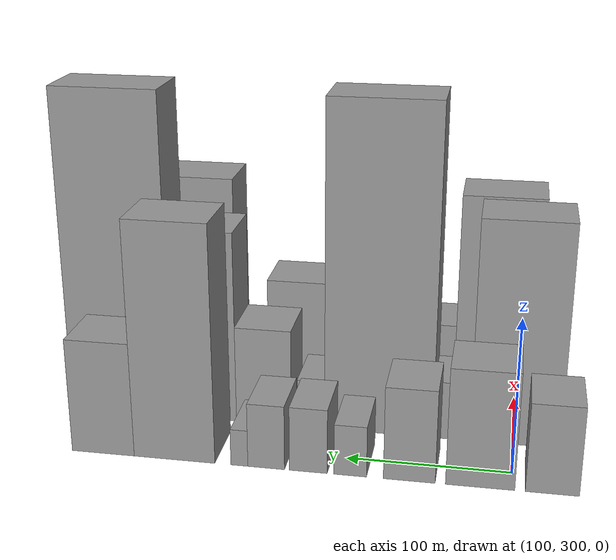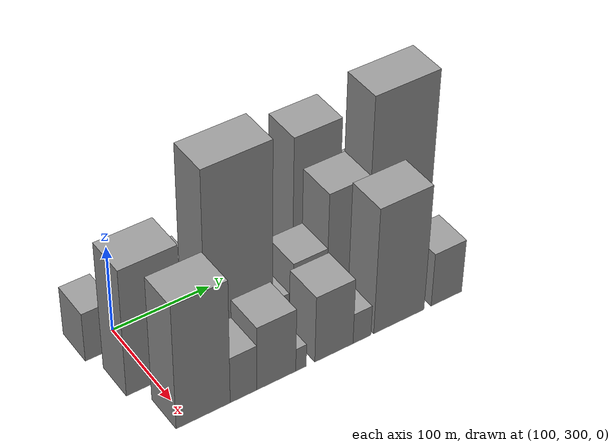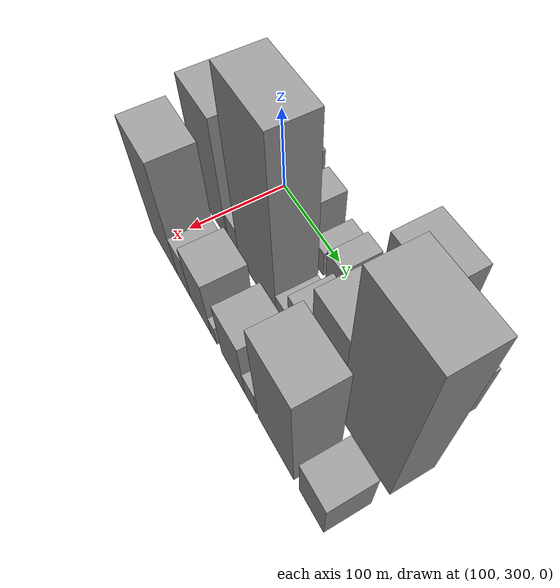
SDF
<sdf version="1.6">
 <world name="default">
  <model name="building_24">
   <static>1</static>
   <pose>100.0000 276.7771 0 0.000000 0.000000 0.000000</pose>
   <link name="link">
    <pose>0 0 28.50 0 0 0</pose>
    <collision name="collision"><geometry><box><size>40.0000 30.8225 57.0000</size></box></geometry></collision>
    <visual name="visual">
     <cast_shadows>0</cast_shadows>
     <geometry><box><size>40.0000 30.8225 57.0000</size></box></geometry>
     <material>
      <script>
       <uri>model://grey_wall/materials/scripts</uri>
       <uri>model://grey_wall/materials/textures</uri>
       <name>vrc/grey_wall</name>
      </script>
     </material>
    </visual>
   </link>
  </model>
  <model name="building_25">
   <static>1</static>
   <pose>100.0000 318.3123 0 0.000000 0.000000 0.000000</pose>
   <link name="link">
    <pose>0 0 37.50 0 0 0</pose>
    <collision name="collision"><geometry><box><size>40.0000 40.2480 75.0000</size></box></geometry></collision>
    <visual name="visual">
     <cast_shadows>0</cast_shadows>
     <geometry><box><size>40.0000 40.2480 75.0000</size></box></geometry>
     <material>
      <script>
       <uri>model://grey_wall/materials/scripts</uri>
       <uri>model://grey_wall/materials/textures</uri>
       <name>vrc/grey_wall</name>
      </script>
     </material>
    </visual>
   </link>
  </model>
  <model name="building_26">
   <static>1</static>
   <pose>100.0000 359.7797 0 0.000000 0.000000 0.000000</pose>
   <link name="link">
    <pose>0 0 30.00 0 0 0</pose>
    <collision name="collision"><geometry><box><size>40.0000 30.6868 60.0000</size></box></geometry></collision>
    <visual name="visual">
     <cast_shadows>0</cast_shadows>
     <geometry><box><size>40.0000 30.6868 60.0000</size></box></geometry>
     <material>
      <script>
       <uri>model://grey_wall/materials/scripts</uri>
       <uri>model://grey_wall/materials/textures</uri>
       <name>vrc/grey_wall</name>
      </script>
     </material>
    </visual>
   </link>
  </model>
  <model name="building_27">
   <static>1</static>
   <pose>100.0000 394.9521 0 0.000000 0.000000 0.000000</pose>
   <link name="link">
    <pose>0 0 16.50 0 0 0</pose>
    <collision name="collision"><geometry><box><size>40.0000 19.6581 33.0000</size></box></geometry></collision>
    <visual name="visual">
     <cast_shadows>0</cast_shadows>
     <geometry><box><size>40.0000 19.6581 33.0000</size></box></geometry>
     <material>
      <script>
       <uri>model://grey_wall/materials/scripts</uri>
       <uri>model://grey_wall/materials/textures</uri>
       <name>vrc/grey_wall</name>
      </script>
     </material>
    </visual>
   </link>
  </model>
  <model name="building_28">
   <static>1</static>
   <pose>100.0000 420.2818 0 0.000000 0.000000 0.000000</pose>
   <link name="link">
    <pose>0 0 21.00 0 0 0</pose>
    <collision name="collision"><geometry><box><size>40.0000 23.0011 42.0000</size></box></geometry></collision>
    <visual name="visual">
     <cast_shadows>0</cast_shadows>
     <geometry><box><size>40.0000 23.0011 42.0000</size></box></geometry>
     <material>
      <script>
       <uri>model://grey_wall/materials/scripts</uri>
       <uri>model://grey_wall/materials/textures</uri>
       <name>vrc/grey_wall</name>
      </script>
     </material>
    </visual>
   </link>
  </model>
  <model name="building_29">
   <static>1</static>
   <pose>100.0000 446.0894 0 0.000000 0.000000 0.000000</pose>
   <link name="link">
    <pose>0 0 21.00 0 0 0</pose>
    <collision name="collision"><geometry><box><size>40.0000 22.6141 42.0000</size></box></geometry></collision>
    <visual name="visual">
     <cast_shadows>0</cast_shadows>
     <geometry><box><size>40.0000 22.6141 42.0000</size></box></geometry>
     <material>
      <script>
       <uri>model://grey_wall/materials/scripts</uri>
       <uri>model://grey_wall/materials/textures</uri>
       <name>vrc/grey_wall</name>
      </script>
     </material>
    </visual>
   </link>
  </model>
  <model name="building_30">
   <static>1</static>
   <pose>100.0000 462.6450 0 0.000000 0.000000 0.000000</pose>
   <link name="link">
    <pose>0 0 12.00 0 0 0</pose>
    <collision name="collision"><geometry><box><size>40.0000 10.4972 24.0000</size></box></geometry></collision>
    <visual name="visual">
     <cast_shadows>0</cast_shadows>
     <geometry><box><size>40.0000 10.4972 24.0000</size></box></geometry>
     <material>
      <script>
       <uri>model://grey_wall/materials/scripts</uri>
       <uri>model://grey_wall/materials/textures</uri>
       <name>vrc/grey_wall</name>
      </script>
     </material>
    </visual>
   </link>
  </model>
  <model name="building_31">
   <static>1</static>
   <pose>100.0000 503.3871 0 0.000000 0.000000 0.000000</pose>
   <link name="link">
    <pose>0 0 76.50 0 0 0</pose>
    <collision name="collision"><geometry><box><size>40.0000 50.9870 153.0000</size></box></geometry></collision>
    <visual name="visual">
     <cast_shadows>0</cast_shadows>
     <geometry><box><size>40.0000 50.9870 153.0000</size></box></geometry>
     <material>
      <script>
       <uri>model://grey_wall/materials/scripts</uri>
       <uri>model://grey_wall/materials/textures</uri>
       <name>vrc/grey_wall</name>
      </script>
     </material>
    </visual>
   </link>
  </model>
  <model name="building_32">
   <static>1</static>
   <pose>100.0000 548.8465 0 0.000000 0.000000 0.000000</pose>
   <link name="link">
    <pose>0 0 37.50 0 0 0</pose>
    <collision name="collision"><geometry><box><size>40.0000 39.9317 75.0000</size></box></geometry></collision>
    <visual name="visual">
     <cast_shadows>0</cast_shadows>
     <geometry><box><size>40.0000 39.9317 75.0000</size></box></geometry>
     <material>
      <script>
       <uri>model://grey_wall/materials/scripts</uri>
       <uri>model://grey_wall/materials/textures</uri>
       <name>vrc/grey_wall</name>
      </script>
     </material>
    </visual>
   </link>
  </model>
  <model name="building_54">
   <static>1</static>
   <pose>155.0000 298.8081 0 0.000000 0.000000 0.000000</pose>
   <link name="link">
    <pose>0 0 73.50 0 0 0</pose>
    <collision name="collision"><geometry><box><size>40.0000 56.2715 147.0000</size></box></geometry></collision>
    <visual name="visual">
     <cast_shadows>0</cast_shadows>
     <geometry><box><size>40.0000 56.2715 147.0000</size></box></geometry>
     <material>
      <script>
       <uri>model://grey_wall/materials/scripts</uri>
       <uri>model://grey_wall/materials/textures</uri>
       <name>vrc/grey_wall</name>
      </script>
     </material>
    </visual>
   </link>
  </model>
  <model name="building_55">
   <static>1</static>
   <pose>155.0000 340.0629 0 0.000000 0.000000 0.000000</pose>
   <link name="link">
    <pose>0 0 19.50 0 0 0</pose>
    <collision name="collision"><geometry><box><size>40.0000 20.2382 39.0000</size></box></geometry></collision>
    <visual name="visual">
     <cast_shadows>0</cast_shadows>
     <geometry><box><size>40.0000 20.2382 39.0000</size></box></geometry>
     <material>
      <script>
       <uri>model://grey_wall/materials/scripts</uri>
       <uri>model://grey_wall/materials/textures</uri>
       <name>vrc/grey_wall</name>
      </script>
     </material>
    </visual>
   </link>
  </model>
  <model name="building_56">
   <static>1</static>
   <pose>155.0000 384.8739 0 0.000000 0.000000 0.000000</pose>
   <link name="link">
    <pose>0 0 108.00 0 0 0</pose>
    <collision name="collision"><geometry><box><size>40.0000 69.3838 216.0000</size></box></geometry></collision>
    <visual name="visual">
     <cast_shadows>0</cast_shadows>
     <geometry><box><size>40.0000 69.3838 216.0000</size></box></geometry>
     <material>
      <script>
       <uri>model://grey_wall/materials/scripts</uri>
       <uri>model://grey_wall/materials/textures</uri>
       <name>vrc/grey_wall</name>
      </script>
     </material>
    </visual>
   </link>
  </model>
  <model name="building_57">
   <static>1</static>
   <pose>155.0000 428.4614 0 0.000000 0.000000 0.000000</pose>
   <link name="link">
    <pose>0 0 16.50 0 0 0</pose>
    <collision name="collision"><geometry><box><size>40.0000 17.7911 33.0000</size></box></geometry></collision>
    <visual name="visual">
     <cast_shadows>0</cast_shadows>
     <geometry><box><size>40.0000 17.7911 33.0000</size></box></geometry>
     <material>
      <script>
       <uri>model://grey_wall/materials/scripts</uri>
       <uri>model://grey_wall/materials/textures</uri>
       <name>vrc/grey_wall</name>
      </script>
     </material>
    </visual>
   </link>
  </model>
  <model name="building_58">
   <static>1</static>
   <pose>155.0000 459.4946 0 0.000000 0.000000 0.000000</pose>
   <link name="link">
    <pose>0 0 33.00 0 0 0</pose>
    <collision name="collision"><geometry><box><size>40.0000 36.2754 66.0000</size></box></geometry></collision>
    <visual name="visual">
     <cast_shadows>0</cast_shadows>
     <geometry><box><size>40.0000 36.2754 66.0000</size></box></geometry>
     <material>
      <script>
       <uri>model://grey_wall/materials/scripts</uri>
       <uri>model://grey_wall/materials/textures</uri>
       <name>vrc/grey_wall</name>
      </script>
     </material>
    </visual>
   </link>
  </model>
  <model name="building_59">
   <static>1</static>
   <pose>155.0000 499.4931 0 0.000000 0.000000 0.000000</pose>
   <link name="link">
    <pose>0 0 64.50 0 0 0</pose>
    <collision name="collision"><geometry><box><size>40.0000 43.7217 129.0000</size></box></geometry></collision>
    <visual name="visual">
     <cast_shadows>0</cast_shadows>
     <geometry><box><size>40.0000 43.7217 129.0000</size></box></geometry>
     <material>
      <script>
       <uri>model://grey_wall/materials/scripts</uri>
       <uri>model://grey_wall/materials/textures</uri>
       <name>vrc/grey_wall</name>
      </script>
     </material>
    </visual>
   </link>
  </model>
  <model name="building_60">
   <static>1</static>
   <pose>155.0000 555.5379 0 0.000000 0.000000 0.000000</pose>
   <link name="link">
    <pose>0 0 108.00 0 0 0</pose>
    <collision name="collision"><geometry><box><size>40.0000 68.3679 216.0000</size></box></geometry></collision>
    <visual name="visual">
     <cast_shadows>0</cast_shadows>
     <geometry><box><size>40.0000 68.3679 216.0000</size></box></geometry>
     <material>
      <script>
       <uri>model://grey_wall/materials/scripts</uri>
       <uri>model://grey_wall/materials/textures</uri>
       <name>vrc/grey_wall</name>
      </script>
     </material>
    </visual>
   </link>
  </model>
  <model name="building_86">
   <static>1</static>
   <pose>210.0000 313.6880 0 0.000000 0.000000 0.000000</pose>
   <link name="link">
    <pose>0 0 72.00 0 0 0</pose>
    <collision name="collision"><geometry><box><size>40.0000 53.6323 144.0000</size></box></geometry></collision>
    <visual name="visual">
     <cast_shadows>0</cast_shadows>
     <geometry><box><size>40.0000 53.6323 144.0000</size></box></geometry>
     <material>
      <script>
       <uri>model://grey_wall/materials/scripts</uri>
       <uri>model://grey_wall/materials/textures</uri>
       <name>vrc/grey_wall</name>
      </script>
     </material>
    </visual>
   </link>
  </model>
  <model name="building_87">
   <static>1</static>
   <pose>210.0000 354.0327 0 0.000000 0.000000 0.000000</pose>
   <link name="link">
    <pose>0 0 27.00 0 0 0</pose>
    <collision name="collision"><geometry><box><size>40.0000 27.0572 54.0000</size></box></geometry></collision>
    <visual name="visual">
     <cast_shadows>0</cast_shadows>
     <geometry><box><size>40.0000 27.0572 54.0000</size></box></geometry>
     <material>
      <script>
       <uri>model://grey_wall/materials/scripts</uri>
       <uri>model://grey_wall/materials/textures</uri>
       <name>vrc/grey_wall</name>
      </script>
     </material>
    </visual>
   </link>
  </model>
  <model name="building_88">
   <static>1</static>
   <pose>210.0000 387.5571 0 0.000000 0.000000 0.000000</pose>
   <link name="link">
    <pose>0 0 37.50 0 0 0</pose>
    <collision name="collision"><geometry><box><size>40.0000 39.9915 75.0000</size></box></geometry></collision>
    <visual name="visual">
     <cast_shadows>0</cast_shadows>
     <geometry><box><size>40.0000 39.9915 75.0000</size></box></geometry>
     <material>
      <script>
       <uri>model://grey_wall/materials/scripts</uri>
       <uri>model://grey_wall/materials/textures</uri>
       <name>vrc/grey_wall</name>
      </script>
     </material>
    </visual>
   </link>
  </model>
  <model name="building_89">
   <static>1</static>
   <pose>210.0000 413.0204 0 0.000000 0.000000 0.000000</pose>
   <link name="link">
    <pose>0 0 13.50 0 0 0</pose>
    <collision name="collision"><geometry><box><size>40.0000 10.9352 27.0000</size></box></geometry></collision>
    <visual name="visual">
     <cast_shadows>0</cast_shadows>
     <geometry><box><size>40.0000 10.9352 27.0000</size></box></geometry>
     <material>
      <script>
       <uri>model://grey_wall/materials/scripts</uri>
       <uri>model://grey_wall/materials/textures</uri>
       <name>vrc/grey_wall</name>
      </script>
     </material>
    </visual>
   </link>
  </model>
  <model name="building_90">
   <static>1</static>
   <pose>210.0000 447.7279 0 0.000000 0.000000 0.000000</pose>
   <link name="link">
    <pose>0 0 39.00 0 0 0</pose>
    <collision name="collision"><geometry><box><size>40.0000 40.4799 78.0000</size></box></geometry></collision>
    <visual name="visual">
     <cast_shadows>0</cast_shadows>
     <geometry><box><size>40.0000 40.4799 78.0000</size></box></geometry>
     <material>
      <script>
       <uri>model://grey_wall/materials/scripts</uri>
       <uri>model://grey_wall/materials/textures</uri>
       <name>vrc/grey_wall</name>
      </script>
     </material>
    </visual>
   </link>
  </model>
  <model name="building_91">
   <static>1</static>
   <pose>210.0000 477.6487 0 0.000000 0.000000 0.000000</pose>
   <link name="link">
    <pose>0 0 18.00 0 0 0</pose>
    <collision name="collision"><geometry><box><size>40.0000 19.3615 36.0000</size></box></geometry></collision>
    <visual name="visual">
     <cast_shadows>0</cast_shadows>
     <geometry><box><size>40.0000 19.3615 36.0000</size></box></geometry>
     <material>
      <script>
       <uri>model://grey_wall/materials/scripts</uri>
       <uri>model://grey_wall/materials/textures</uri>
       <name>vrc/grey_wall</name>
      </script>
     </material>
    </visual>
   </link>
  </model>
  <model name="building_92">
   <static>1</static>
   <pose>210.0000 517.9566 0 0.000000 0.000000 0.000000</pose>
   <link name="link">
    <pose>0 0 73.50 0 0 0</pose>
    <collision name="collision"><geometry><box><size>40.0000 55.2544 147.0000</size></box></geometry></collision>
    <visual name="visual">
     <cast_shadows>0</cast_shadows>
     <geometry><box><size>40.0000 55.2544 147.0000</size></box></geometry>
     <material>
      <script>
       <uri>model://grey_wall/materials/scripts</uri>
       <uri>model://grey_wall/materials/textures</uri>
       <name>vrc/grey_wall</name>
      </script>
     </material>
    </visual>
   </link>
  </model>
  <model name="building_93">
   <static>1</static>
   <pose>210.0000 570.7666 0 0.000000 0.000000 0.000000</pose>
   <link name="link">
    <pose>0 0 31.50 0 0 0</pose>
    <collision name="collision"><geometry><box><size>40.0000 34.3656 63.0000</size></box></geometry></collision>
    <visual name="visual">
     <cast_shadows>0</cast_shadows>
     <geometry><box><size>40.0000 34.3656 63.0000</size></box></geometry>
     <material>
      <script>
       <uri>model://grey_wall/materials/scripts</uri>
       <uri>model://grey_wall/materials/textures</uri>
       <name>vrc/grey_wall</name>
      </script>
     </material>
    </visual>
   </link>
  </model>
 </world>
</sdf>
